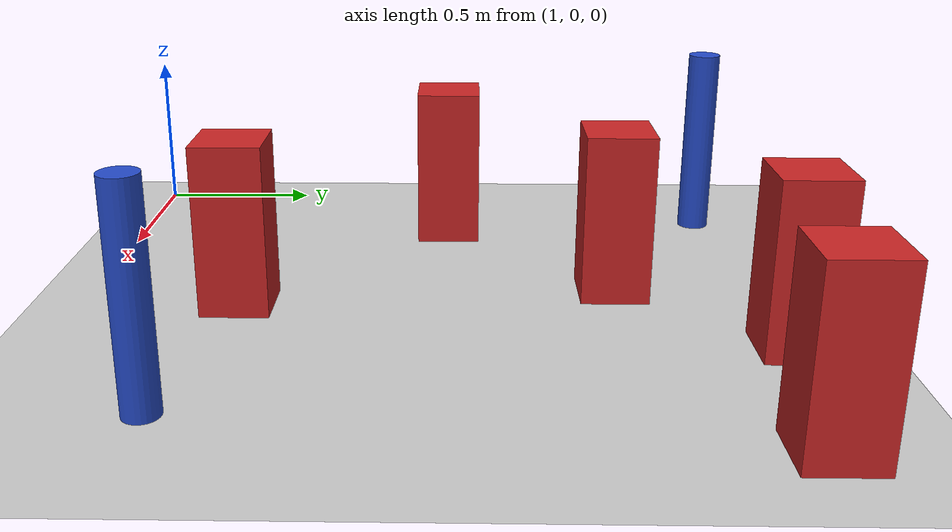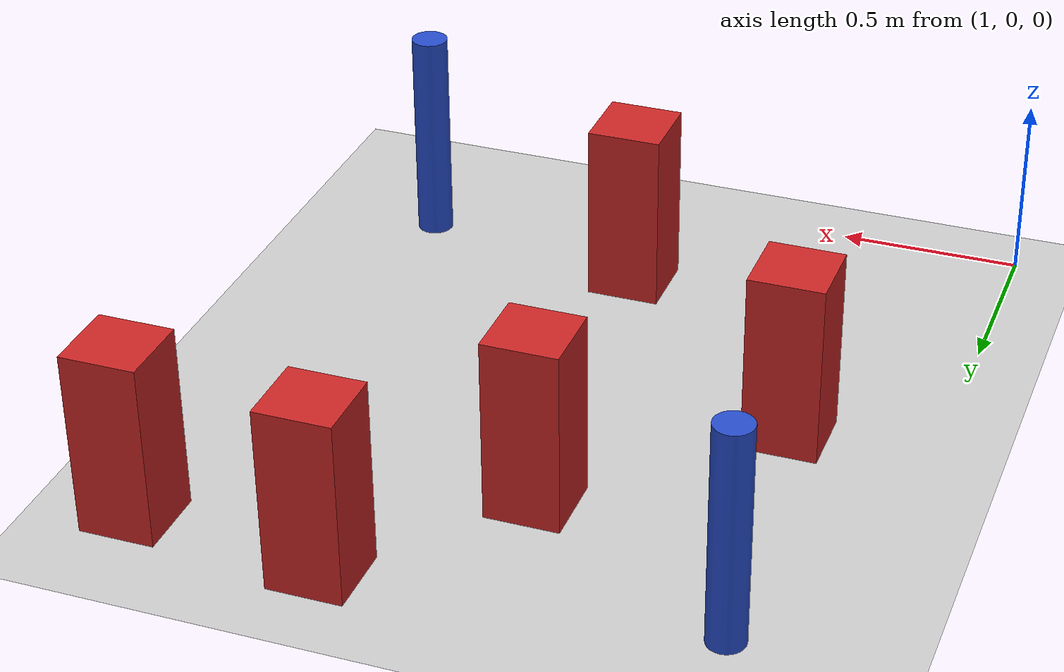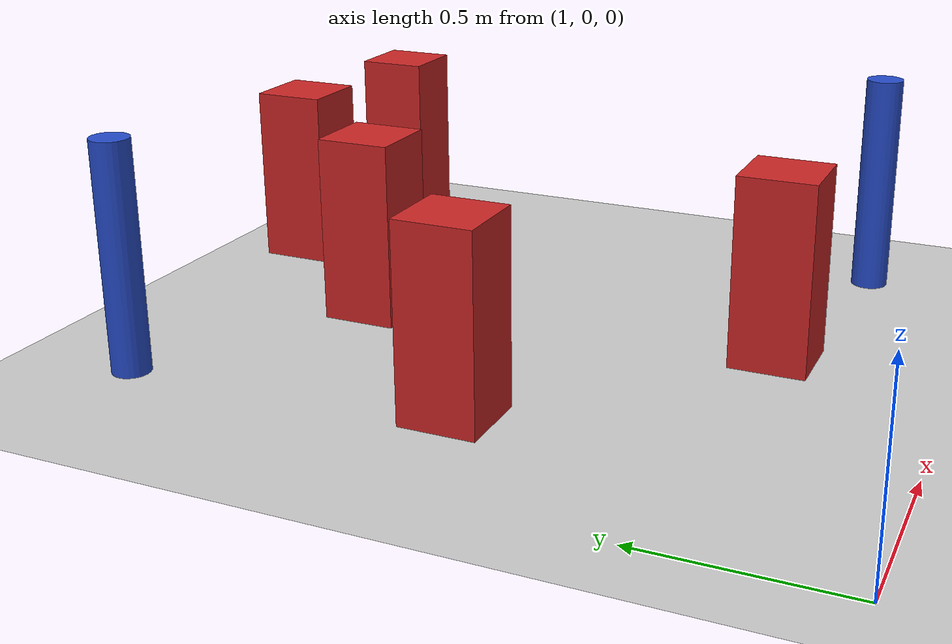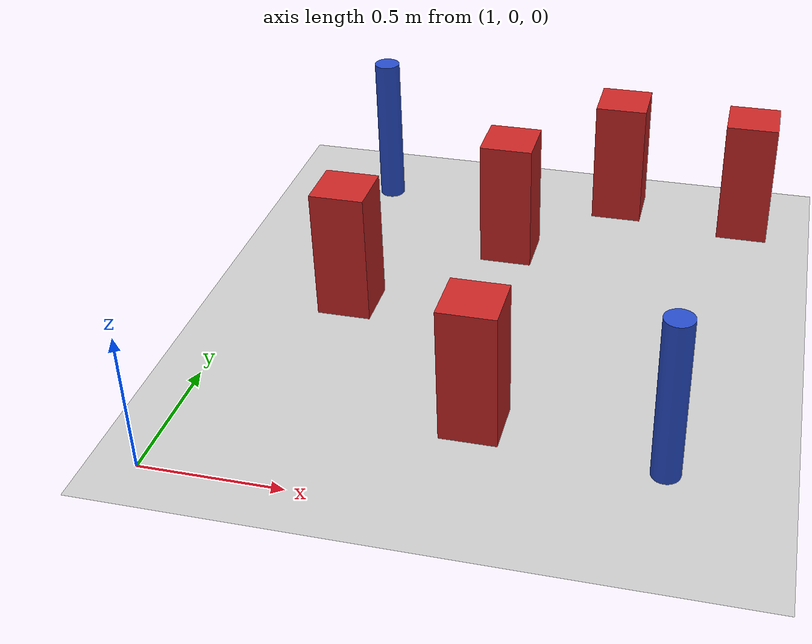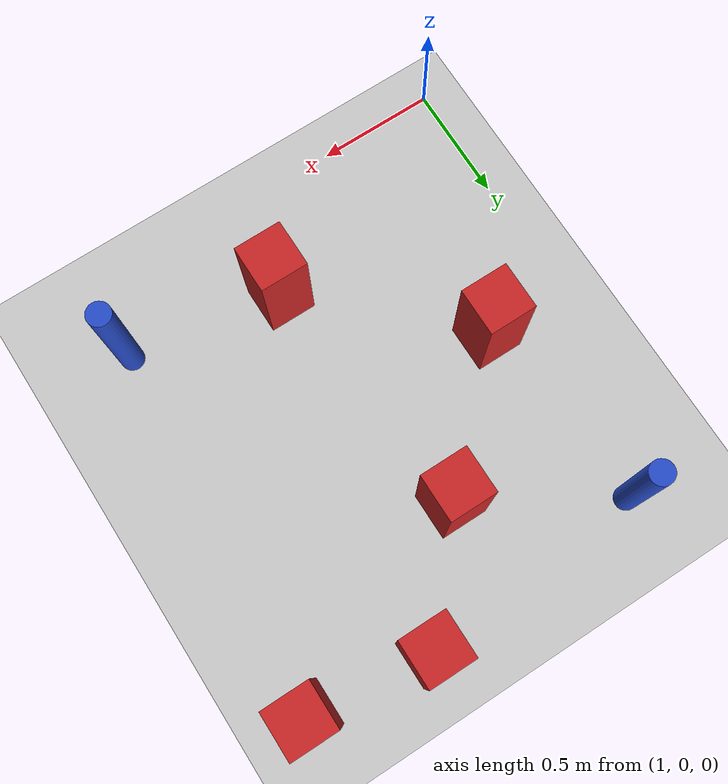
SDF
<sdf version="1.6">
 <world name="default">
  <model name="ground_plane">
   <static>1</static>
   <link name="link">
    <collision name="collision">
     <geometry><plane><normal>0 0 1</normal><size>100 100</size></plane></geometry>
     <surface><friction><ode><mu>100</mu><mu2>50</mu2></ode></friction></surface>
    </collision>
    <visual name="visual">
     <cast_shadows>0</cast_shadows>
     <geometry><plane><normal>0 0 1</normal><size>100 100</size></plane></geometry>
     <material>
      <ambient>1.0 1.0 1.0 1.0</ambient>
      <diffuse>0.8 0.8 0.8 1.0</diffuse>
      <specular>0.01 0.01 0.01 1.000000</specular>
     </material>
    </visual>
   </link>
  </model>
  <model name="square_post_obstacle0">
   <static>true</static>
   <pose>1.99976582621 0.442310010033 -6.11067671241e-07 -5.50515727128e-06 -8.79689657224e-07 2.37013304536e-05</pose>
   <link name="link">
    <pose>0 0 0.25 0 -0 0</pose>
    <inertial>
     <mass>100</mass>
     <inertia>
      <ixx>0.166667</ixx>
      <ixy>0</ixy>
      <ixz>0</ixz>
      <iyy>0.166667</iyy>
      <iyz>0</iyz>
      <izz>0.166667</izz>
     </inertia>
    </inertial>
    <collision name="collision"><geometry><box><size>.2 .2 .5</size></box></geometry></collision>
    <visual name="visual">
     <geometry><box><size>.2 .2 .5</size></box></geometry>
     <material>
      <script><name>Gazebo/Red</name><uri>file://media/materials/scripts/gazebo.material</uri></script>
     </material>
    </visual>
   </link>
  </model>
  <model name="square_post_obstacle81">
   <static>true</static>
   <pose>1.37803710354 1.04155616456 -6.11067671241e-07 -5.50515727128e-06 -8.79689657224e-07 2.37013304536e-05</pose>
   <link name="link">
    <pose>0 0 0.25 0 -0 0</pose>
    <inertial>
     <mass>100</mass>
     <inertia>
      <ixx>0.166667</ixx>
      <ixy>0</ixy>
      <ixz>0</ixz>
      <iyy>0.166667</iyy>
      <iyz>0</iyz>
      <izz>0.166667</izz>
     </inertia>
    </inertial>
    <collision name="collision"><geometry><box><size>.2 .2 .5</size></box></geometry></collision>
    <visual name="visual">
     <geometry><box><size>.2 .2 .5</size></box></geometry>
     <material>
      <script><name>Gazebo/Red</name><uri>file://media/materials/scripts/gazebo.material</uri></script>
     </material>
    </visual>
   </link>
  </model>
  <model name="pole_obstacle95">
   <static>true</static>
   <pose>2.64689914589 0.333201132117 -9.47619616065e-06 5.49618799738e-07 2.36310414074e-07 -1.55090534794e-07</pose>
   <link name="link">
    <pose>0 0 0.3 0 -0 0</pose>
    <inertial>
     <mass>1</mass>
     <inertia><ixx>0.145833</ixx><ixy>0</ixy><ixz>0</ixz><iyy>0.145833</iyy><iyz>0</iyz><izz>0.125</izz></inertia>
    </inertial>
    <collision name="collision">
     <geometry><cylinder><radius>0.05</radius><length>.6</length></cylinder></geometry>
    </collision>
    <visual name="visual">
     <geometry><cylinder><radius>0.05</radius><length>.6</length></cylinder></geometry>
     <material>
      <script><name>Gazebo/Blue</name><uri>file://media/materials/scripts/gazebo.material</uri></script>
     </material>
    </visual>
   </link>
  </model>
  <model name="square_post_obstacle150">
   <static>true</static>
   <pose>1.88636288929 1.53490131025 -6.11067671241e-07 -5.50515727128e-06 -8.79689657224e-07 2.37013304536e-05</pose>
   <link name="link">
    <pose>0 0 0.25 0 -0 0</pose>
    <inertial>
     <mass>100</mass>
     <inertia>
      <ixx>0.166667</ixx>
      <ixy>0</ixy>
      <ixz>0</ixz>
      <iyy>0.166667</iyy>
      <iyz>0</iyz>
      <izz>0.166667</izz>
     </inertia>
    </inertial>
    <collision name="collision"><geometry><box><size>.2 .2 .5</size></box></geometry></collision>
    <visual name="visual">
     <geometry><box><size>.2 .2 .5</size></box></geometry>
     <material>
      <script><name>Gazebo/Red</name><uri>file://media/materials/scripts/gazebo.material</uri></script>
     </material>
    </visual>
   </link>
  </model>
  <model name="pole_obstacle173">
   <static>true</static>
   <pose>1.28737014026 1.89392033038 -9.47619616065e-06 5.49618799737e-07 2.36310414065e-07 -1.55090534798e-07</pose>
   <link name="link">
    <pose>0 0 0.3 0 -0 0</pose>
    <inertial>
     <mass>1</mass>
     <inertia><ixx>0.145833</ixx><ixy>0</ixy><ixz>0</ixz><iyy>0.145833</iyy><iyz>0</iyz><izz>0.125</izz></inertia>
    </inertial>
    <collision name="collision">
     <geometry><cylinder><radius>0.05</radius><length>.6</length></cylinder></geometry>
    </collision>
    <visual name="visual">
     <geometry><cylinder><radius>0.05</radius><length>.6</length></cylinder></geometry>
     <material>
      <script><name>Gazebo/Blue</name><uri>file://media/materials/scripts/gazebo.material</uri></script>
     </material>
    </visual>
   </link>
  </model>
  <model name="square_post_obstacle186">
   <static>true</static>
   <pose>2.26548481791 1.97073641685 -6.11067671241e-07 -5.50515727128e-06 -8.79689657224e-07 2.37013304536e-05</pose>
   <link name="link">
    <pose>0 0 0.25 0 -0 0</pose>
    <inertial>
     <mass>100</mass>
     <inertia>
      <ixx>0.166667</ixx>
      <ixy>0</ixy>
      <ixz>0</ixz>
      <iyy>0.166667</iyy>
      <iyz>0</iyz>
      <izz>0.166667</izz>
     </inertia>
    </inertial>
    <collision name="collision"><geometry><box><size>.2 .2 .5</size></box></geometry></collision>
    <visual name="visual">
     <geometry><box><size>.2 .2 .5</size></box></geometry>
     <material>
      <script><name>Gazebo/Red</name><uri>file://media/materials/scripts/gazebo.material</uri></script>
     </material>
    </visual>
   </link>
  </model>
  <model name="square_post_obstacle211">
   <static>true</static>
   <pose>2.7884399502 1.91397997688 -6.11067671241e-07 -5.50515727128e-06 -8.79689657224e-07 2.37013304536e-05</pose>
   <link name="link">
    <pose>0 0 0.25 0 -0 0</pose>
    <inertial>
     <mass>100</mass>
     <inertia>
      <ixx>0.166667</ixx>
      <ixy>0</ixy>
      <ixz>0</ixz>
      <iyy>0.166667</iyy>
      <iyz>0</iyz>
      <izz>0.166667</izz>
     </inertia>
    </inertial>
    <collision name="collision"><geometry><box><size>.2 .2 .5</size></box></geometry></collision>
    <visual name="visual">
     <geometry><box><size>.2 .2 .5</size></box></geometry>
     <material>
      <script><name>Gazebo/Red</name><uri>file://media/materials/scripts/gazebo.material</uri></script>
     </material>
    </visual>
   </link>
  </model>
 </world>
</sdf>
